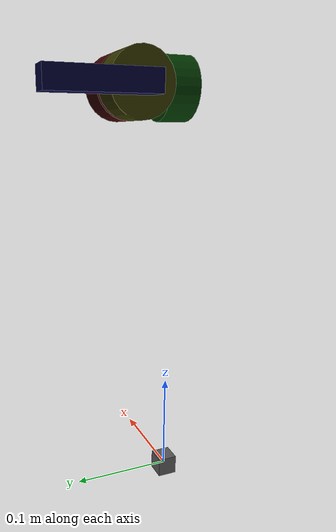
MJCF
<mujoco model="jaco2">
      <option viscosity="5"/>
    <compiler angle="radian" meshdir="meshes" balanceinertia="true"/>
    <!-- asstes -->
    <include file="stl_asstes.xml"/>
    <asset>

<!-- colors -->
        <material name="aluminium" rgba="0.35 0.35 0.35 1"/>
        <material name="petg" rgba="0.7 0.7 0.75 1"/>
        <material name="carbon" rgba="0.05 0.05 0.05 1"/>
        <material name="silicone" rgba="0.612 0.11 0.42 1"/>
        <material name="pcb" rgba="0.253 0.41 0.202 1"/>

    </asset>

    <worldbody>

 <light directional="true" pos="-0.5 0 3" dir="0 0 -1" />
		            <geom type="box" size="0.01 0.01 0.01" material="aluminium"/>
		                <body name = "chassis" pos="0 0 0.4" euler='0 0 0' >

                <!-- leg 0 -->
                        <body name="chassis1" pos="0 0 0" euler='1.57 0 0'>
				<geom type="cylinder" size="0.03 0.015" pos = "0 0 0" rgba="0 0.2 0 1" mass = "0.3"/>
<joint name="joint2" axis="0 0 -1" pos="0 0 0" />
                           <body name="chassis2" pos="0 0 -0.05" euler='0 1.57 0'>
				<geom type="cylinder" size="0.03 0.015" pos = "0 0 0" rgba="0.2 0 0 1" mass = "0.3"/>

                               <body name="chassis3" pos="0 0 -0.034" euler='0 0 0'>
				<geom type="cylinder" size="0.03 0.015" pos = "0 0 0" rgba="0.2 0.2 0 1" mass = "0.3"/>
                                                                  <body name="chassis4" pos="0.04 0 -0.025" euler='0 0 0'>
				<geom type="box" size="0.05 0.01 0.01" pos = "0 0 0" rgba="0 0 0.2 1" mass = "0.3"/>

                        </body>
                                   </body>
                        </body>
</body>

</body>
    </worldbody>

<include file="sensor_actuator.xml"/>

</mujoco>

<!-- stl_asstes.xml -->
<mujoco>
    <asset>
        <mesh file="meshes/front_alu_3.STL" />
        <mesh file="meshes/front_alu_1.STL"/>
        <mesh file="meshes/back_alu_1.STL"/>
        <mesh file="meshes/back_alu_2.STL"/>
        <mesh file="meshes/battery.STL"/>
        <mesh file="meshes/logic.STL"/>
        <mesh file="meshes/case1.STL"/>
        <mesh file="meshes/case2.STL"/>
        <mesh file="meshes/logic2.STL"/>
        <mesh file="meshes/electronics.STL"/>
        <mesh file="meshes/encoder.STL"/>
        <mesh file="meshes/gearbox_1.STL"/>
        <mesh file="meshes/gearbox_3.STL"/>
        <mesh file="meshes/gearbox1_spacer.STL"/>
        <mesh file="meshes/gearbox2.STL"/>
        <mesh file="meshes/lower_leg.STL"/>
        <mesh file="meshes/upper_leg_belt.STL"/>
        <mesh file="meshes/upper_leg.STL"/>
        <mesh file="meshes/spacer_spine.STL"/>
    </asset>
</mujoco>

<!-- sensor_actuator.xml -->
<mujoco>
    <sensor>

        <jointpos name="jointpos1" joint="joint1" />

        <jointvel name="jointvel1" joint="joint1" />
        <torque name="torqu1" site="torq1" />

    </sensor>

    <actuator>

       <motor name="torque2" joint="joint1"  gear="1" ctrllimited="false" ctrlrange="-10 10" forcelimited = "true" forcerange = "-2.3 2.3"/>
        <motor name="torque3" joint="joint2"  gear="1" ctrllimited="false" ctrlrange="-10 10" forcelimited = "true" forcerange = "-2.3 2.3"/>
    </actuator>
</mujoco>
